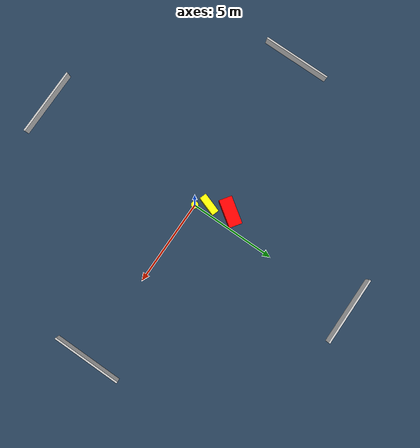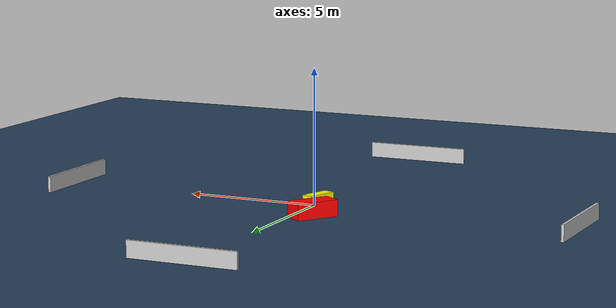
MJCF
<?xml version="1.0" ?>
<mujoco model="generated_environment">
  <option timestep="0.01" integrator="RK4" cone="elliptic"/>
  <default>
    <geom density="1"/>
  </default>
  <asset>
    <texture builtin="gradient" height="3072" name="skybox" rgb1="0.3 0.5 0.7" rgb2="0 0 0" type="skybox" width="512"/>
    <texture builtin="checker" height="300" name="groundplane" rgb1="0.2 0.3 0.4" rgb2="0.1 0.2 0.3" type="2d" width="300"/>
    <material name="groundplane" reflectance="0.2" texrepeat="5 5" texture="groundplane"/>
  </asset>
  <worldbody>
    <light dir="0 0 -1" directional="true" pos="0 0 1.5"/>
    <geom condim="3" friction="0.5 0.005 0.001" material="groundplane" name="floor" pos="0 0 0" size="0 0 0.05" type="plane"/>
    <body name="walls">
      <geom name="wall_1" condim="4" pos="-10.0 0.0 0.3" rgba="0.800000011920929 0.800000011920929 0.800000011920929 1.0" size="0.05 2.0 0.3" type="box"/>
      <geom name="wall_2" condim="4" pos="10.0 0.0 0.3" rgba="0.800000011920929 0.800000011920929 0.800000011920929 1.0" size="0.05 2.0 0.3" type="box"/>
      <geom name="wall_3" condim="4" pos="0.0 -10.0 0.3" rgba="0.800000011920929 0.800000011920929 0.800000011920929 1.0" size="2.0 0.05 0.3" type="box"/>
      <geom name="wall_4" condim="4" pos="0.0 10.0 0.3" rgba="0.800000011920929 0.800000011920929 0.800000011920929 1.0" size="2.0 0.05 0.3" type="box"/>
    </body>
    <body name="robot">
      <joint name="joint_x" type="slide" pos="0 0 0" axis="1 0 0"/>
      <joint name="joint_y" type="slide" pos="0 0 0" axis="0 1 0"/>
      <geom name="robot" type="cylinder" pos="0.0 0.0 0.2" size="0.2 0.2 0.0" mass="5.0" friction="1.0 0.005 0.0001" condim="4" rgba="1.0 1.0 0.0 1.0"/>
    </body>
    <body name="obstacle_1_movable">
      <geom name="obstacle_1_movable" condim="4" pos="-0.4419289738305566 0.6409156226205063 0.3" euler="0 0 251.18054798125877" friction="0.0 0.005 0.001" rgba="1.0 1.0 0.0 1.0" size="0.5790055213829491 0.2049114377230638 0.3" type="box" mass="0.1"/>
      <joint type="free"/>
    </body>
    <body name="obstacle_2_static">
      <geom name="obstacle_2_static" condim="4" pos="-0.7715171840345536 1.8176028700551226 0.3" euler="0 0 145.37529936306655" friction="0.0 0.005 0.001" rgba="1.0 0.0 0.0 1.0" size="0.3705343029137463 0.7994089674226807 0.3" type="box"/>
    </body>
  </worldbody>
  <actuator>
    <motor name="actuator_x" joint="joint_x" gear="1" ctrlrange="-1 1"/>
    <motor name="actuator_y" joint="joint_y" gear="1" ctrlrange="-1 1"/>
  </actuator>
</mujoco>
